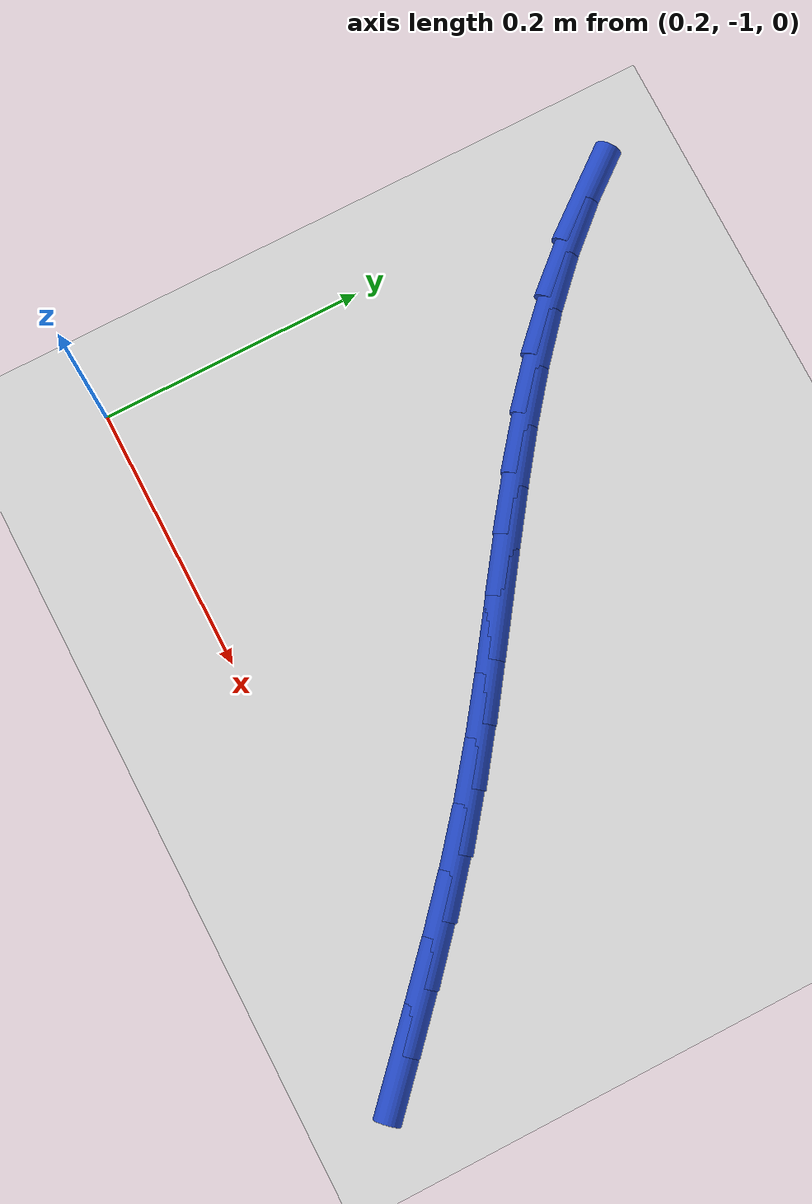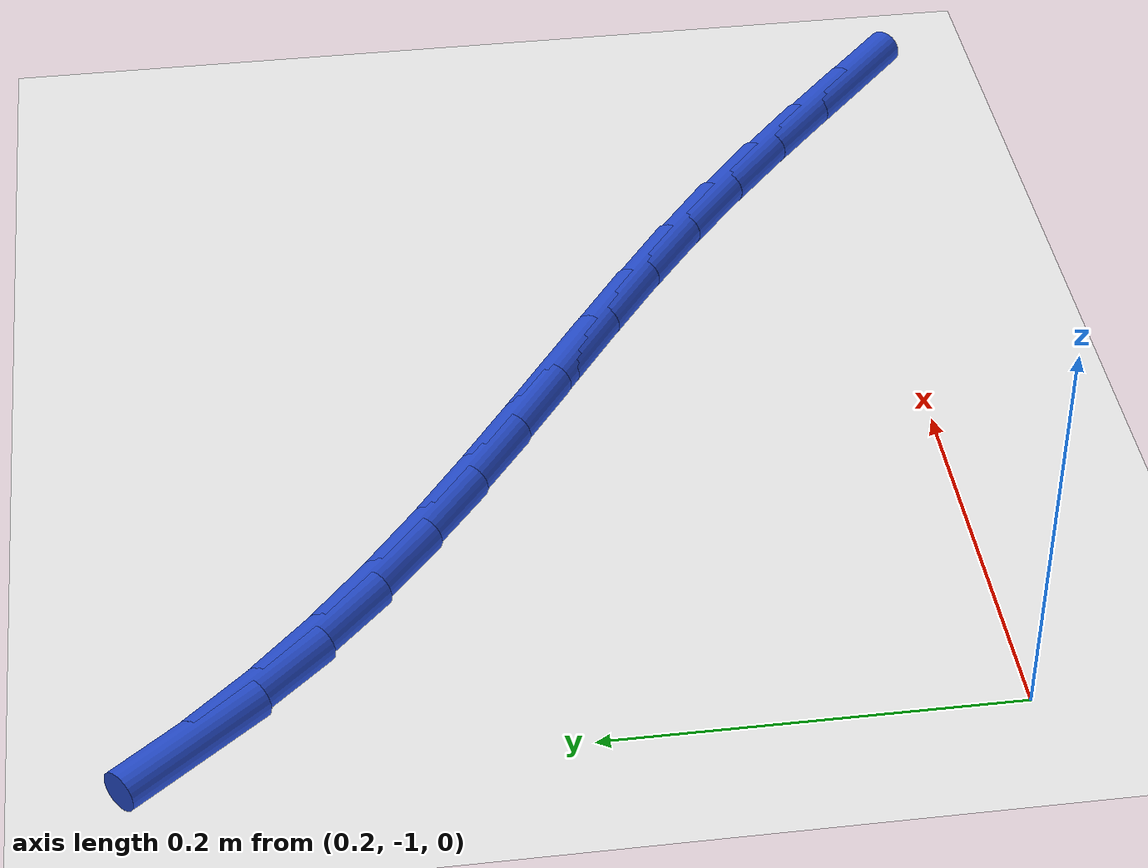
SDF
<sdf version="1.6">
 <world name="default">
  <model name="ground_plane">
   <static>1</static>
   <link name="link">
    <collision name="collision">
     <geometry><plane><normal>0 0 1</normal><size>100 100</size></plane></geometry>
     <surface><friction><ode><mu>100</mu><mu2>50</mu2></ode></friction></surface>
    </collision>
    <visual name="visual">
     <cast_shadows>0</cast_shadows>
     <geometry><plane><normal>0 0 1</normal><size>100 100</size></plane></geometry>
     <material>
      <script><uri>file://media/materials/scripts/gazebo.material</uri><name>Gazebo/WhiteGlow</name></script>
     </material>
    </visual>
   </link>
  </model>
  <model name="line">
   <link name="link_151">
    <pose>0.6975432498589561 -1.0191090200864925 0.01 0 1.57 -0.746271248208617</pose>
    <collision name="collision">
     <geometry><cylinder><radius>0.01</radius><length>0.08</length></cylinder></geometry>
    </collision>
    <visual name="visual">
     <material>
      <script><name>Gazebo/Blue</name><uri>file://media/materials/scripts/gazebo.material</uri></script>
     </material>
     <geometry><cylinder><radius>0.01</radius><length>0.08</length></cylinder></geometry>
    </visual>
   </link>
   <link name="link_152">
    <pose>0.6634144311303298 -0.9875516130799075 0.01 0 1.57 -0.7395074317150017</pose>
    <collision name="collision">
     <geometry><cylinder><radius>0.01</radius><length>0.08</length></cylinder></geometry>
    </collision>
    <visual name="visual">
     <material>
      <script><name>Gazebo/Blue</name><uri>file://media/materials/scripts/gazebo.material</uri></script>
     </material>
     <geometry><cylinder><radius>0.01</radius><length>0.08</length></cylinder></geometry>
    </visual>
   </link>
   <link name="link_153">
    <pose>0.628955597277525 -0.9561187231147266 0.01 0 1.57 -0.7208835326938372</pose>
    <collision name="collision">
     <geometry><cylinder><radius>0.01</radius><length>0.08</length></cylinder></geometry>
    </collision>
    <visual name="visual">
     <material>
      <script><name>Gazebo/Blue</name><uri>file://media/materials/scripts/gazebo.material</uri></script>
     </material>
     <geometry><cylinder><radius>0.01</radius><length>0.08</length></cylinder></geometry>
    </visual>
   </link>
   <link name="link_154">
    <pose>0.5940066539260331 -0.925411452596597 0.01 0 1.57 -0.6901536709021049</pose>
    <collision name="collision">
     <geometry><cylinder><radius>0.01</radius><length>0.08</length></cylinder></geometry>
    </collision>
    <visual name="visual">
     <material>
      <script><name>Gazebo/Blue</name><uri>file://media/materials/scripts/gazebo.material</uri></script>
     </material>
     <geometry><cylinder><radius>0.01</radius><length>0.08</length></cylinder></geometry>
    </visual>
   </link>
   <link name="link_155">
    <pose>0.5584107135131419 -0.8960236404520447 0.01 0 1.57 -0.6555647471850615</pose>
    <collision name="collision">
     <geometry><cylinder><radius>0.01</radius><length>0.08</length></cylinder></geometry>
    </collision>
    <visual name="visual">
     <material>
      <script><name>Gazebo/Blue</name><uri>file://media/materials/scripts/gazebo.material</uri></script>
     </material>
     <geometry><cylinder><radius>0.01</radius><length>0.08</length></cylinder></geometry>
    </visual>
   </link>
   <link name="link_156">
    <pose>0.5221815417129062 -0.8681625933436963 0.01 0 1.57 -0.6302984613815369</pose>
    <collision name="collision">
     <geometry><cylinder><radius>0.01</radius><length>0.08</length></cylinder></geometry>
    </collision>
    <visual name="visual">
     <material>
      <script><name>Gazebo/Blue</name><uri>file://media/materials/scripts/gazebo.material</uri></script>
     </material>
     <geometry><cylinder><radius>0.01</radius><length>0.08</length></cylinder></geometry>
    </visual>
   </link>
   <link name="link_157">
    <pose>0.48558561247536136 -0.8414632297165925 0.01 0 1.57 -0.6157577032878165</pose>
    <collision name="collision">
     <geometry><cylinder><radius>0.01</radius><length>0.08</length></cylinder></geometry>
    </collision>
    <visual name="visual">
     <material>
      <script><name>Gazebo/Blue</name><uri>file://media/materials/scripts/gazebo.material</uri></script>
     </material>
     <geometry><cylinder><radius>0.01</radius><length>0.08</length></cylinder></geometry>
    </visual>
   </link>
   <link name="link_158">
    <pose>0.44890981468282487 -0.8155142278732395 0.01 0 1.57 -0.6122300794846564</pose>
    <collision name="collision">
     <geometry><cylinder><radius>0.01</radius><length>0.08</length></cylinder></geometry>
    </collision>
    <visual name="visual">
     <material>
      <script><name>Gazebo/Blue</name><uri>file://media/materials/scripts/gazebo.material</uri></script>
     </material>
     <geometry><cylinder><radius>0.01</radius><length>0.08</length></cylinder></geometry>
    </visual>
   </link>
   <link name="link_159">
    <pose>0.4124410372176134 -0.7899042661161423 0.01 0 1.57 -0.619990073722379</pose>
    <collision name="collision">
     <geometry><cylinder><radius>0.01</radius><length>0.08</length></cylinder></geometry>
    </collision>
    <visual name="visual">
     <material>
      <script><name>Gazebo/Blue</name><uri>file://media/materials/scripts/gazebo.material</uri></script>
     </material>
     <geometry><cylinder><radius>0.01</radius><length>0.08</length></cylinder></geometry>
    </visual>
   </link>
   <link name="link_160">
    <pose>0.3764661689620455 -0.764222022747807 0.01 0 1.57 -0.6393108301637089</pose>
    <collision name="collision">
     <geometry><cylinder><radius>0.01</radius><length>0.08</length></cylinder></geometry>
    </collision>
    <visual name="visual">
     <material>
      <script><name>Gazebo/Blue</name><uri>file://media/materials/scripts/gazebo.material</uri></script>
     </material>
     <geometry><cylinder><radius>0.01</radius><length>0.08</length></cylinder></geometry>
    </visual>
   </link>
   <link name="link_161">
    <pose>0.3412720987984381 -0.7380561760707398 0.01 0 1.57 -0.6704319618846831</pose>
    <collision name="collision">
     <geometry><cylinder><radius>0.01</radius><length>0.08</length></cylinder></geometry>
    </collision>
    <visual name="visual">
     <material>
      <script><name>Gazebo/Blue</name><uri>file://media/materials/scripts/gazebo.material</uri></script>
     </material>
     <geometry><cylinder><radius>0.01</radius><length>0.08</length></cylinder></geometry>
    </visual>
   </link>
   <link name="link_162">
    <pose>0.3071457156091085 -0.7109954043874454 0.01 0 1.57 -0.7134767386335656</pose>
    <collision name="collision">
     <geometry><cylinder><radius>0.01</radius><length>0.08</length></cylinder></geometry>
    </collision>
    <visual name="visual">
     <material>
      <script><name>Gazebo/Blue</name><uri>file://media/materials/scripts/gazebo.material</uri></script>
     </material>
     <geometry><cylinder><radius>0.01</radius><length>0.08</length></cylinder></geometry>
    </visual>
   </link>
   <link name="link_163">
    <pose>0.27437390827637415 -0.6826283860004301 0.01 0 1.57 -0.7683164791974199</pose>
    <collision name="collision">
     <geometry><cylinder><radius>0.01</radius><length>0.08</length></cylinder></geometry>
    </collision>
    <visual name="visual">
     <material>
      <script><name>Gazebo/Blue</name><uri>file://media/materials/scripts/gazebo.material</uri></script>
     </material>
     <geometry><cylinder><radius>0.01</radius><length>0.08</length></cylinder></geometry>
    </visual>
   </link>
   <link name="link_164">
    <pose>0.24324356568255226 -0.6525437992121994 0.01 0 1.57 -0.8335516633757762</pose>
    <collision name="collision">
     <geometry><cylinder><radius>0.01</radius><length>0.08</length></cylinder></geometry>
    </collision>
    <visual name="visual">
     <material>
      <script><name>Gazebo/Blue</name><uri>file://media/materials/scripts/gazebo.material</uri></script>
     </material>
     <geometry><cylinder><radius>0.01</radius><length>0.08</length></cylinder></geometry>
    </visual>
   </link>
   <link name="link_165">
    <pose>0.21402352239582662 -0.6203648943612022 0.01 0 1.57 -0.8994325116833566</pose>
    <collision name="collision">
     <geometry><cylinder><radius>0.01</radius><length>0.08</length></cylinder></geometry>
    </collision>
    <visual name="visual">
     <material>
      <script><name>Gazebo/Blue</name><uri>file://media/materials/scripts/gazebo.material</uri></script>
     </material>
     <geometry><cylinder><radius>0.01</radius><length>0.08</length></cylinder></geometry>
    </visual>
   </link>
  </model>
 </world>
</sdf>
